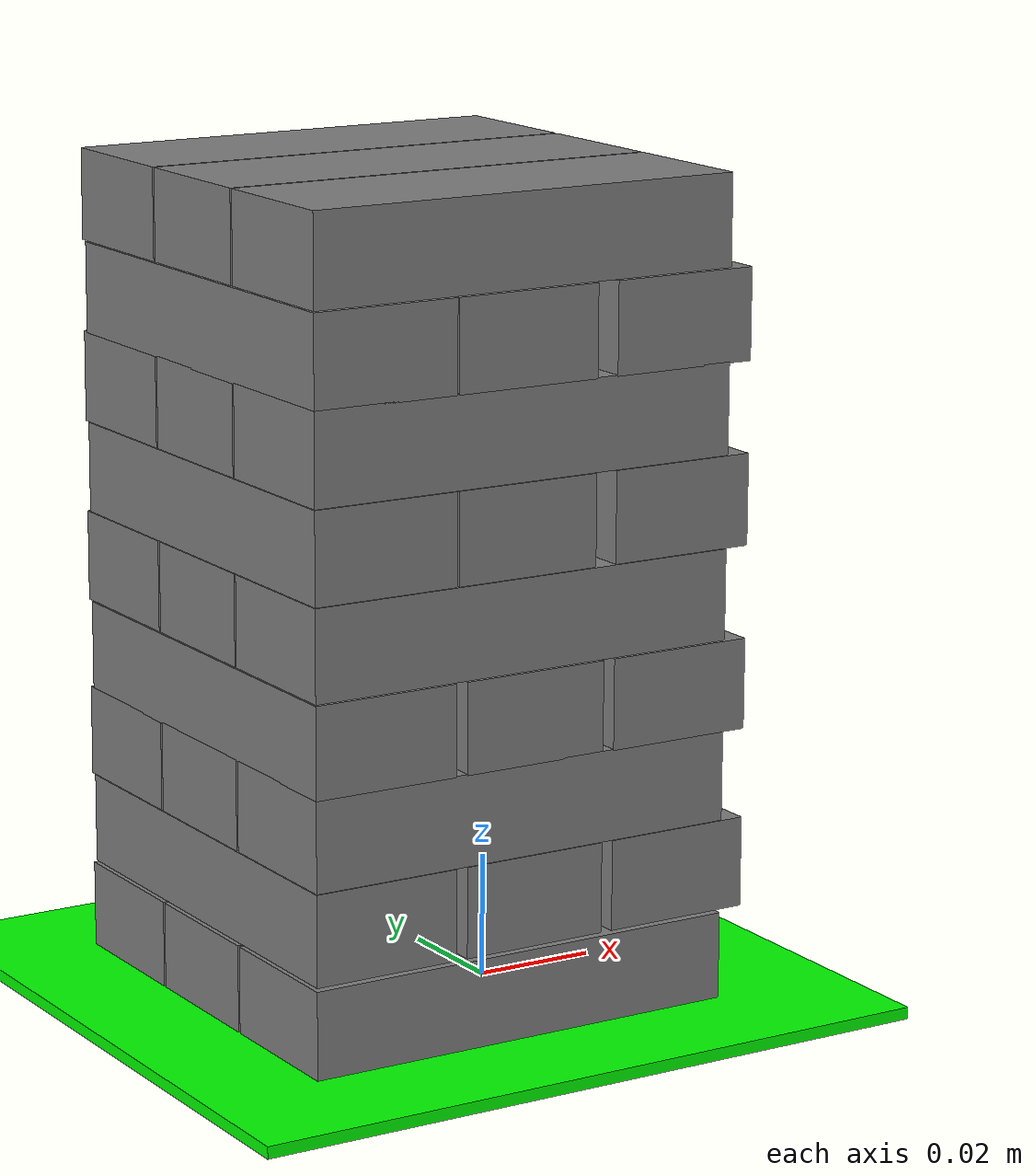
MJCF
<?xml version="1.0" ?>
<mujoco>
    <size njmax="8000" nconmax="4000"/>
    <worldbody>

    	<!--Layer 1 0.075 0.025 0.015-->
        <body name="box_0_0" pos="0 0 0">
            <joint type='free'/>
            <geom size="0.0375 0.0125 0.0075" type="box"/>
        </body>

        <body name="box_0_1" pos="0 0.0255 0">
            <joint type='free'/>
            <geom size="0.0375 0.0125 0.0075" type="box"/>
        </body>

        <body name="box_0_2" pos="0 0.051 0">
            <joint type='free'/>
            <geom size="0.0375 0.0125 0.0075" type="box"/>
        </body>

        <!--Layer 2-->
        <body name="box_1_0" pos="-0.025 0.025 0.0156">
            <joint type='free'/>
            <geom size="0.0375 0.0125 0.0075" euler="0 0 90" type="box"/>
        </body>

        <body name="box_1_1" pos="0.002 0.025 0.0156">
            <joint type='free'/>
            <geom size="0.0375 0.0125 0.0075" euler="0 0 90" type="box"/>
        </body>

        <body name="box_1_2" pos="0.029 0.025 0.0156">
            <joint type='free'/>
            <geom size="0.0375 0.0125 0.0075" euler="0 0 90" type="box"/>
        </body>

        <!--Layer 3-->
        <body name="box_2_0" pos="0 0 0.0307">
            <joint type='free'/>
            <geom size="0.0375 0.0125 0.0075" type="box"/>
        </body>

        <body name="box_2_1" pos="0 0.0255 0.0307">
            <joint type='free'/>
            <geom size="0.0375 0.0125 0.0075" type="box"/>
        </body>

        <body name="box_2_2" pos="0 0.051 0.0307">
            <joint type='free'/>
            <geom size="0.0375 0.0125 0.0075" type="box"/>
        </body>

        <!--Layer 4-->
        <body name="box_3_0" pos="-0.025 0.025 0.0455">
            <joint type='free'/>
            <geom size="0.0375 0.0125 0.0075" euler="0 0 90" type="box"/>
        </body>

        <body name="box_3_1" pos="0.002 0.025 0.0455">
            <joint type='free'/>
            <geom size="0.0375 0.0125 0.0075" euler="0 0 90" type="box"/>
        </body>

        <body name="box_3_2" pos="0.029 0.025 0.0455">
            <joint type='free'/>
            <geom size="0.0375 0.0125 0.0075" euler="0 0 90" type="box"/>
        </body>

        <!--Layer 5-->
        <body name="box_4_0" pos="0 0 0.0607">
            <joint type='free'/>
            <geom size="0.0375 0.0125 0.0075" type="box"/>
        </body>

        <body name="box_4_1" pos="0 0.0255 0.0607">
            <joint type='free'/>
            <geom size="0.0375 0.0125 0.0075" type="box"/>
        </body>

        <body name="box_4_2" pos="0 0.051 0.0607">
            <joint type='free'/>
            <geom size="0.0375 0.0125 0.0075" type="box"/>
        </body>

        <!--Layer 6-->
        <body name="box_5_0" pos="-0.025 0.025 0.0758">
            <joint type='free'/>
            <geom size="0.0375 0.0125 0.0075" euler="0 0 90" type="box"/>
        </body>

        <body name="box_5_1" pos="0.0003 0.025 0.0758">
            <joint type='free'/>
            <geom size="0.0375 0.0125 0.0075" euler="0 0 90" type="box"/>
        </body>

        <body name="box_5_2" pos="0.029 0.025 0.0758">
            <joint type='free'/>
            <geom size="0.0375 0.0125 0.0075" euler="0 0 90" type="box"/>
        </body>

        <!--Layer 7-->
        <body name="box_6_0" pos="0 0 0.0909">
            <joint type='free'/>
            <geom size="0.0375 0.0125 0.0075" type="box"/>
        </body>

        <body name="box_6_1" pos="0 0.0255 0.0909">
            <joint type='free'/>
            <geom size="0.0375 0.0125 0.0075" type="box"/>
        </body>

        <body name="box_6_2" pos="0 0.051 0.0909">
            <joint type='free'/>
            <geom size="0.0375 0.0125 0.0075" type="box"/>
        </body>

        <!--Layer 8-->
        <body name="box_7_0" pos="-0.025 0.025 0.1057">
            <joint type='free'/>
            <geom size="0.0375 0.0125 0.0075" euler="0 0 90" type="box"/>
        </body>

        <body name="box_7_1" pos="0.0003 0.025 0.1057">
            <joint type='free'/>
            <geom size="0.0375 0.0125 0.0075" euler="0 0 90" type="box"/>
        </body>

        <body name="box_7_2" pos="0.029 0.025 0.1057">
            <joint type='free'/>
            <geom size="0.0375 0.0125 0.0075" euler="0 0 90" type="box"/>
        </body>

        <!--Layer 9-->
        <body name="box_8_0" pos="0 0 0.1209">
            <joint type='free'/>
            <geom size="0.0375 0.0125 0.0075" type="box"/>
        </body>

        <body name="box_8_1" pos="0 0.0255 0.1209">
            <joint type='free'/>
            <geom size="0.0375 0.0125 0.0075" type="box"/>
        </body>

        <body name="box_8_2" pos="0 0.051 0.1209">
            <joint type='free'/>
            <geom size="0.0375 0.0125 0.0075" type="box"/>
        </body>

        <body name="floor" pos="0 0 -0.008">
            <geom size="1.0 1.0 0.001" rgba="0 1 0 1" type="box"/>
        </body>
    </worldbody>
</mujoco>
